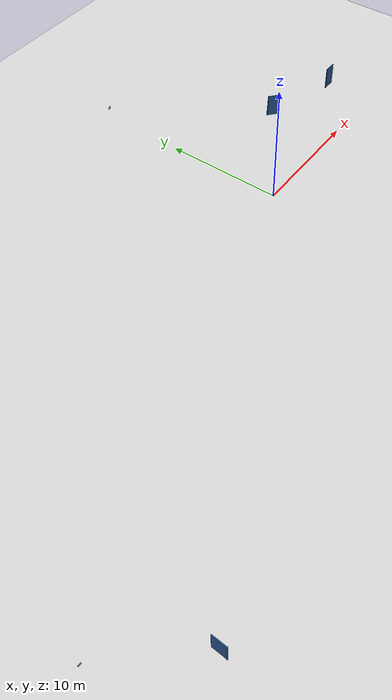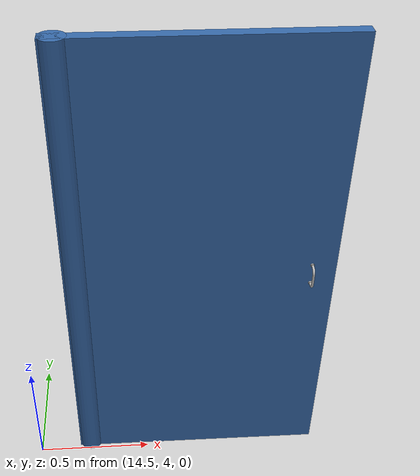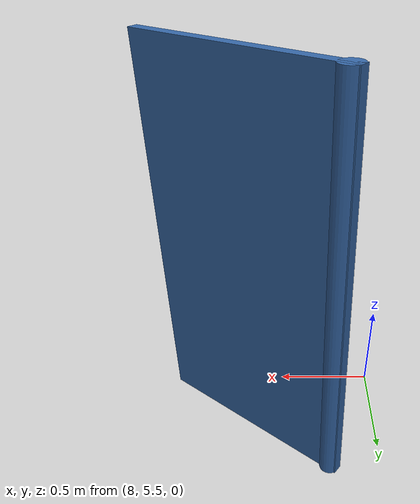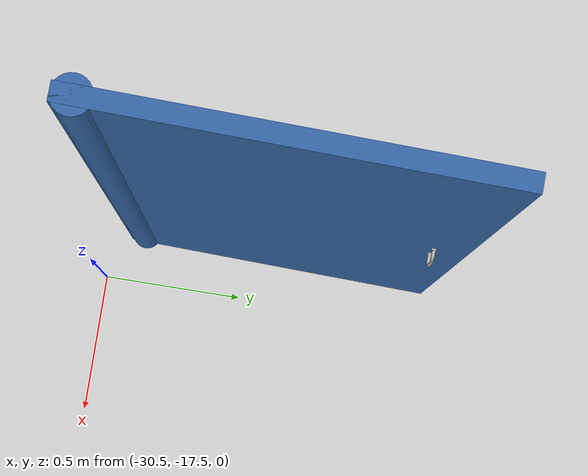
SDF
<sdf version="1.6">
 <world name="default">
  <light name="sun" type="directional">
   <pose>0 0 10 0 -0 0</pose>
   <diffuse>0.8 0.8 0.8 1</diffuse>
   <specular>0.2 0.2 0.2 1</specular>
   <attenuation>
    <range>1000</range>
    <constant>0.9</constant>
    <linear>0.01</linear>
    <quadratic>0.001</quadratic>
   </attenuation>
   <direction>-0.5 0.1 -0.9</direction>
  </light>
  <model name="ground_plane">
   <static>1</static>
   <link name="link">
    <collision name="collision">
     <geometry><plane><normal>0 0 1</normal><size>100 100</size></plane></geometry>
     <surface><friction><ode><mu>100</mu><mu2>50</mu2></ode></friction></surface>
    </collision>
    <visual name="visual">
     <cast_shadows>0</cast_shadows>
     <geometry><plane><normal>0 0 1</normal><size>100 100</size></plane></geometry>
     <material>
      <script><uri>file://media/materials/scripts/gazebo.material</uri><name>Gazebo/Grey</name></script>
     </material>
    </visual>
   </link>
  </model>
  <gravity>0 0 -9.8</gravity>
  <magnetic_field>6e-06 2.3e-05 -4.2e-05</magnetic_field>
  <atmosphere type="adiabatic"/>
  <physics name="default_physics" default="0" type="ode">
   <max_step_size>0.001</max_step_size>
   <real_time_factor>1</real_time_factor>
   <real_time_update_rate>1000</real_time_update_rate>
  </physics>
  <scene><ambient>0.4 0.4 0.4 1</ambient><background>0.7 0.7 0.7 1</background><shadows>1</shadows></scene>
  <spherical_coordinates>
   <surface_model>EARTH_WGS84</surface_model>
   <latitude_deg>0</latitude_deg>
   <longitude_deg>0</longitude_deg>
   <elevation>0</elevation>
   <heading_deg>0</heading_deg>
  </spherical_coordinates>
  <model name="hinge_right_door_0">
   <link name="link_0">
    <inertial>
     <mass>0.11</mass>
     <inertia>
      <ixx>0.0366896</ixx>
      <ixy>0</ixy>
      <ixz>0</ixz>
      <iyy>0.0477583</iyy>
      <iyz>0</iyz>
      <izz>0.0111146</izz>
     </inertia>
    </inertial>
    <pose>0.25 0 1 0 -0 0</pose>
    <visual name="visual">
     <geometry><box><size>1.1 0.05 2</size></box></geometry>
     <material>
      <lighting>1</lighting>
      <script><uri>file://media/materials/scripts/gazebo.material</uri><name>Gazebo/Grey</name></script>
      <shader type="pixel"><normal_map>__default__</normal_map></shader>
      <ambient>0.204 0.396 0.643 1</ambient>
      <diffuse>0.7 0.7 0.7 1</diffuse>
      <specular>0.01 0.01 0.01 1</specular>
      <emissive>0 0 0 1</emissive>
     </material>
    </visual>
    <collision name="collision">
     <geometry><box><size>1.1 0.05 2</size></box></geometry>
     <surface>
      <friction>
       <ode><mu>1</mu><mu2>1</mu2><fdir1>0 0 0</fdir1><slip1>0</slip1><slip2>0</slip2></ode>
       <torsional>
        <coefficient>1</coefficient>
        <patch_radius>0</patch_radius>
        <surface_radius>0</surface_radius>
        <use_patch_radius>1</use_patch_radius>
        <ode><slip>0</slip></ode>
       </torsional>
      </friction>
      <bounce><restitution_coefficient>0</restitution_coefficient><threshold>1e+06</threshold></bounce>
      <contact>
       <collide_without_contact>0</collide_without_contact>
       <collide_without_contact_bitmask>1</collide_without_contact_bitmask>
       <collide_bitmask>1</collide_bitmask>
       <ode>
        <soft_cfm>0</soft_cfm>
        <soft_erp>0.2</soft_erp>
        <kp>1e+13</kp>
        <kd>1</kd>
        <max_vel>0.01</max_vel>
        <min_depth>0</min_depth>
       </ode>
       <bullet>
        <split_impulse>1</split_impulse>
        <split_impulse_penetration_threshold>-0.01</split_impulse_penetration_threshold>
        <soft_cfm>0</soft_cfm>
        <soft_erp>0.2</soft_erp>
        <kp>1e+13</kp>
        <kd>1</kd>
       </bullet>
      </contact>
     </surface>
    </collision>
   </link>
   <link name="link_1">
    <inertial>
     <mass>10.9956</mass>
     <inertia>
      <ixx>3.67206</ixx>
      <ixy>0</ixy>
      <ixz>0</ixz>
      <iyy>3.67206</iyy>
      <iyz>0</iyz>
      <izz>0.0137445</izz>
     </inertia>
    </inertial>
    <pose>-0.25 0 1 0 -0 0</pose>
    <visual name="visual">
     <geometry><cylinder><radius>0.05</radius><length>2</length></cylinder></geometry>
     <material>
      <lighting>1</lighting>
      <script><uri>file://media/materials/scripts/gazebo.material</uri><name>Gazebo/Grey</name></script>
      <shader type="pixel"><normal_map>__default__</normal_map></shader>
      <ambient>0.204 0.396 0.643 1</ambient>
      <diffuse>0.7 0.7 0.7 1</diffuse>
      <specular>0.01 0.01 0.01 1</specular>
      <emissive>0 0 0 1</emissive>
     </material>
    </visual>
    <collision name="collision">
     <geometry><cylinder><radius>0.05</radius><length>2</length></cylinder></geometry>
     <surface>
      <friction>
       <ode><mu>1</mu><mu2>1</mu2><fdir1>0 0 0</fdir1><slip1>0</slip1><slip2>0</slip2></ode>
       <torsional>
        <coefficient>1</coefficient>
        <patch_radius>0</patch_radius>
        <surface_radius>0</surface_radius>
        <use_patch_radius>1</use_patch_radius>
        <ode><slip>0</slip></ode>
       </torsional>
      </friction>
      <bounce><restitution_coefficient>0</restitution_coefficient><threshold>1e+06</threshold></bounce>
      <contact>
       <collide_without_contact>0</collide_without_contact>
       <collide_without_contact_bitmask>1</collide_without_contact_bitmask>
       <collide_bitmask>1</collide_bitmask>
       <ode>
        <soft_cfm>0</soft_cfm>
        <soft_erp>0.2</soft_erp>
        <kp>1e+13</kp>
        <kd>1</kd>
        <max_vel>0.01</max_vel>
        <min_depth>0</min_depth>
       </ode>
       <bullet>
        <split_impulse>1</split_impulse>
        <split_impulse_penetration_threshold>-0.01</split_impulse_penetration_threshold>
        <soft_cfm>0</soft_cfm>
        <soft_erp>0.2</soft_erp>
        <kp>1e+13</kp>
        <kd>1</kd>
       </bullet>
      </contact>
     </surface>
    </collision>
   </link>
   <link name="knob">
    <inertial>
     <mass>0.1</mass>
     <inertia><ixx>1</ixx><ixy>0</ixy><ixz>0</ixz><iyy>1</iyy><iyz>0</iyz><izz>1</izz></inertia>
    </inertial>
    <pose>0.7 -0.065 1 0 -0 0</pose>
    <visual name="visual">
     <pose>0 0.04 0 -1.57 -0 3.14</pose>
     <geometry><mesh><uri>model://door/door_puller_knob.dae</uri></mesh></geometry>
    </visual>
    <collision name="collision">
     <pose>0 0.04 0 -1.57 -0 3.14</pose>
     <geometry><box><size>-0.02 -0.1 -0.09</size></box></geometry>
    </collision>
   </link>
   <joint name="hinge" type="revolute">
    <parent>link_1</parent>
    <child>link_0</child>
    <pose>-0.5 0 0 0 -0 0</pose>
    <axis>
     <xyz>0 0 1</xyz>
     <use_parent_model_frame>0</use_parent_model_frame>
     <limit>
      <lower>-1.79769e+308</lower>
      <upper>1.79769e+308</upper>
      <effort>-1</effort>
      <velocity>-1</velocity>
     </limit>
     <dynamics>
      <spring_reference>0</spring_reference>
      <spring_stiffness>0</spring_stiffness>
      <damping>0</damping>
      <friction>0</friction>
     </dynamics>
    </axis>
    <physics>
     <ode><limit><cfm>0</cfm><erp>0.2</erp></limit><suspension><cfm>0</cfm><erp>0.2</erp></suspension></ode>
    </physics>
   </joint>
   <joint name="knob_link" type="fixed">
    <parent>link_0</parent>
    <child>knob</child>
    <axis>
     <xyz>0 0 1</xyz>
     <dynamics><spring_reference>0</spring_reference><spring_stiffness>0</spring_stiffness></dynamics>
     <use_parent_model_frame>0</use_parent_model_frame>
     <limit><lower>-1e+16</lower><upper>1e+16</upper></limit>
    </axis>
   </joint>
   <joint name="floor_link" type="fixed">
    <child>link_1</child>
    <parent>world</parent>
    <axis>
     <xyz>0 0 1</xyz>
     <dynamics><spring_reference>0</spring_reference><spring_stiffness>0</spring_stiffness></dynamics>
     <use_parent_model_frame>0</use_parent_model_frame>
     <limit><lower>-1e+16</lower><upper>1e+16</upper></limit>
    </axis>
   </joint>
   <pose>14.9828 4.04216 0 0 0 -0.00239</pose>
  </model>
  <model name="hinge_right_door_1">
   <link name="link_0">
    <inertial>
     <mass>0.11</mass>
     <inertia>
      <ixx>0.0366896</ixx>
      <ixy>0</ixy>
      <ixz>0</ixz>
      <iyy>0.0477583</iyy>
      <iyz>0</iyz>
      <izz>0.0111146</izz>
     </inertia>
    </inertial>
    <pose>0.25 0 1 0 -0 0</pose>
    <visual name="visual">
     <geometry><box><size>1.1 0.05 2</size></box></geometry>
     <material>
      <lighting>1</lighting>
      <script><uri>file://media/materials/scripts/gazebo.material</uri><name>Gazebo/Grey</name></script>
      <shader type="pixel"><normal_map>__default__</normal_map></shader>
      <ambient>0.204 0.396 0.643 1</ambient>
      <diffuse>0.7 0.7 0.7 1</diffuse>
      <specular>0.01 0.01 0.01 1</specular>
      <emissive>0 0 0 1</emissive>
     </material>
    </visual>
    <collision name="collision">
     <geometry><box><size>1.1 0.05 2</size></box></geometry>
     <surface>
      <friction>
       <ode><mu>1</mu><mu2>1</mu2><fdir1>0 0 0</fdir1><slip1>0</slip1><slip2>0</slip2></ode>
       <torsional>
        <coefficient>1</coefficient>
        <patch_radius>0</patch_radius>
        <surface_radius>0</surface_radius>
        <use_patch_radius>1</use_patch_radius>
        <ode><slip>0</slip></ode>
       </torsional>
      </friction>
      <bounce><restitution_coefficient>0</restitution_coefficient><threshold>1e+06</threshold></bounce>
      <contact>
       <collide_without_contact>0</collide_without_contact>
       <collide_without_contact_bitmask>1</collide_without_contact_bitmask>
       <collide_bitmask>1</collide_bitmask>
       <ode>
        <soft_cfm>0</soft_cfm>
        <soft_erp>0.2</soft_erp>
        <kp>1e+13</kp>
        <kd>1</kd>
        <max_vel>0.01</max_vel>
        <min_depth>0</min_depth>
       </ode>
       <bullet>
        <split_impulse>1</split_impulse>
        <split_impulse_penetration_threshold>-0.01</split_impulse_penetration_threshold>
        <soft_cfm>0</soft_cfm>
        <soft_erp>0.2</soft_erp>
        <kp>1e+13</kp>
        <kd>1</kd>
       </bullet>
      </contact>
     </surface>
    </collision>
   </link>
   <link name="link_1">
    <inertial>
     <mass>10.9956</mass>
     <inertia>
      <ixx>3.67206</ixx>
      <ixy>0</ixy>
      <ixz>0</ixz>
      <iyy>3.67206</iyy>
      <iyz>0</iyz>
      <izz>0.0137445</izz>
     </inertia>
    </inertial>
    <pose>-0.25 0 1 0 -0 0</pose>
    <visual name="visual">
     <geometry><cylinder><radius>0.05</radius><length>2</length></cylinder></geometry>
     <material>
      <lighting>1</lighting>
      <script><uri>file://media/materials/scripts/gazebo.material</uri><name>Gazebo/Grey</name></script>
      <shader type="pixel"><normal_map>__default__</normal_map></shader>
      <ambient>0.204 0.396 0.643 1</ambient>
      <diffuse>0.7 0.7 0.7 1</diffuse>
      <specular>0.01 0.01 0.01 1</specular>
      <emissive>0 0 0 1</emissive>
     </material>
    </visual>
    <collision name="collision">
     <geometry><cylinder><radius>0.05</radius><length>2</length></cylinder></geometry>
     <surface>
      <friction>
       <ode><mu>1</mu><mu2>1</mu2><fdir1>0 0 0</fdir1><slip1>0</slip1><slip2>0</slip2></ode>
       <torsional>
        <coefficient>1</coefficient>
        <patch_radius>0</patch_radius>
        <surface_radius>0</surface_radius>
        <use_patch_radius>1</use_patch_radius>
        <ode><slip>0</slip></ode>
       </torsional>
      </friction>
      <bounce><restitution_coefficient>0</restitution_coefficient><threshold>1e+06</threshold></bounce>
      <contact>
       <collide_without_contact>0</collide_without_contact>
       <collide_without_contact_bitmask>1</collide_without_contact_bitmask>
       <collide_bitmask>1</collide_bitmask>
       <ode>
        <soft_cfm>0</soft_cfm>
        <soft_erp>0.2</soft_erp>
        <kp>1e+13</kp>
        <kd>1</kd>
        <max_vel>0.01</max_vel>
        <min_depth>0</min_depth>
       </ode>
       <bullet>
        <split_impulse>1</split_impulse>
        <split_impulse_penetration_threshold>-0.01</split_impulse_penetration_threshold>
        <soft_cfm>0</soft_cfm>
        <soft_erp>0.2</soft_erp>
        <kp>1e+13</kp>
        <kd>1</kd>
       </bullet>
      </contact>
     </surface>
    </collision>
   </link>
   <link name="knob">
    <inertial>
     <mass>0.1</mass>
     <inertia><ixx>1</ixx><ixy>0</ixy><ixz>0</ixz><iyy>1</iyy><iyz>0</iyz><izz>1</izz></inertia>
    </inertial>
    <pose>0.7 -0.065 1 0 -0 0</pose>
    <visual name="visual">
     <pose>0 0.04 0 -1.57 -0 3.14</pose>
     <geometry><mesh><uri>model://door/door_puller_knob.dae</uri></mesh></geometry>
    </visual>
    <collision name="collision">
     <pose>0 0.04 0 -1.57 -0 3.14</pose>
     <geometry><box><size>-0.02 -0.1 -0.09</size></box></geometry>
    </collision>
   </link>
   <joint name="hinge" type="revolute">
    <parent>link_1</parent>
    <child>link_0</child>
    <pose>-0.5 0 0 0 -0 0</pose>
    <axis>
     <xyz>0 0 1</xyz>
     <use_parent_model_frame>0</use_parent_model_frame>
     <limit>
      <lower>-1.79769e+308</lower>
      <upper>1.79769e+308</upper>
      <effort>-1</effort>
      <velocity>-1</velocity>
     </limit>
     <dynamics>
      <spring_reference>0</spring_reference>
      <spring_stiffness>0</spring_stiffness>
      <damping>0</damping>
      <friction>0</friction>
     </dynamics>
    </axis>
    <physics>
     <ode><limit><cfm>0</cfm><erp>0.2</erp></limit><suspension><cfm>0</cfm><erp>0.2</erp></suspension></ode>
    </physics>
   </joint>
   <joint name="knob_link" type="fixed">
    <parent>link_0</parent>
    <child>knob</child>
    <axis>
     <xyz>0 0 1</xyz>
     <dynamics><spring_reference>0</spring_reference><spring_stiffness>0</spring_stiffness></dynamics>
     <use_parent_model_frame>0</use_parent_model_frame>
     <limit><lower>-1e+16</lower><upper>1e+16</upper></limit>
    </axis>
   </joint>
   <joint name="floor_link" type="fixed">
    <child>link_1</child>
    <parent>world</parent>
    <axis>
     <xyz>0 0 1</xyz>
     <dynamics><spring_reference>0</spring_reference><spring_stiffness>0</spring_stiffness></dynamics>
     <use_parent_model_frame>0</use_parent_model_frame>
     <limit><lower>-1e+16</lower><upper>1e+16</upper></limit>
    </axis>
   </joint>
   <pose>8.47034 5.99285 0.032393 0.015197 0.04089 -0.665871</pose>
  </model>
  <model name="vent">
   <link name="link_0">
    <inertial>
     <mass>0.11</mass>
     <inertia>
      <ixx>0.0366896</ixx>
      <ixy>0</ixy>
      <ixz>0</ixz>
      <iyy>0.0477583</iyy>
      <iyz>0</iyz>
      <izz>0.0111146</izz>
     </inertia>
    </inertial>
    <visual name="visual">
     <geometry><box><size>0.25 0.025 0.25</size></box></geometry>
     <material>
      <script>
       <uri>model://vent/materials/scripts</uri>
       <uri>model://vent/materials/textures</uri>
       <name>Marker/Diffuse</name>
      </script>
     </material>
    </visual>
    <collision name="collision">
     <geometry><box><size>0.25 0.05 0.25</size></box></geometry>
     <surface>
      <friction>
       <ode><mu>1</mu><mu2>1</mu2><fdir1>0 0 0</fdir1><slip1>0</slip1><slip2>0</slip2></ode>
       <torsional>
        <coefficient>1</coefficient>
        <patch_radius>0</patch_radius>
        <surface_radius>0</surface_radius>
        <use_patch_radius>1</use_patch_radius>
        <ode><slip>0</slip></ode>
       </torsional>
      </friction>
      <bounce><restitution_coefficient>0</restitution_coefficient><threshold>1e+06</threshold></bounce>
      <contact>
       <collide_without_contact>0</collide_without_contact>
       <collide_without_contact_bitmask>1</collide_without_contact_bitmask>
       <collide_bitmask>1</collide_bitmask>
       <ode>
        <soft_cfm>0</soft_cfm>
        <soft_erp>0.2</soft_erp>
        <kp>1e+13</kp>
        <kd>1</kd>
        <max_vel>0.01</max_vel>
        <min_depth>0</min_depth>
       </ode>
       <bullet>
        <split_impulse>1</split_impulse>
        <split_impulse_penetration_threshold>-0.01</split_impulse_penetration_threshold>
        <soft_cfm>0</soft_cfm>
        <soft_erp>0.2</soft_erp>
        <kp>1e+13</kp>
        <kd>1</kd>
       </bullet>
      </contact>
     </surface>
    </collision>
   </link>
   <pose>0.878008 18.088 0.12499 1e-06 2e-06 0.012997</pose>
  </model>
  <model name="vent_0">
   <link name="link_0">
    <inertial>
     <mass>0.11</mass>
     <inertia>
      <ixx>0.0366896</ixx>
      <ixy>0</ixy>
      <ixz>0</ixz>
      <iyy>0.0477583</iyy>
      <iyz>0</iyz>
      <izz>0.0111146</izz>
     </inertia>
    </inertial>
    <visual name="visual">
     <geometry><box><size>0.25 0.025 0.25</size></box></geometry>
     <material>
      <script>
       <uri>model://vent/materials/scripts</uri>
       <uri>model://vent/materials/textures</uri>
       <name>Marker/Diffuse</name>
      </script>
     </material>
    </visual>
    <collision name="collision">
     <geometry><box><size>0.25 0.05 0.25</size></box></geometry>
     <surface>
      <friction>
       <ode><mu>1</mu><mu2>1</mu2><fdir1>0 0 0</fdir1><slip1>0</slip1><slip2>0</slip2></ode>
       <torsional>
        <coefficient>1</coefficient>
        <patch_radius>0</patch_radius>
        <surface_radius>0</surface_radius>
        <use_patch_radius>1</use_patch_radius>
        <ode><slip>0</slip></ode>
       </torsional>
      </friction>
      <bounce><restitution_coefficient>0</restitution_coefficient><threshold>1e+06</threshold></bounce>
      <contact>
       <collide_without_contact>0</collide_without_contact>
       <collide_without_contact_bitmask>1</collide_without_contact_bitmask>
       <collide_bitmask>1</collide_bitmask>
       <ode>
        <soft_cfm>0</soft_cfm>
        <soft_erp>0.2</soft_erp>
        <kp>1e+13</kp>
        <kd>1</kd>
        <max_vel>0.01</max_vel>
        <min_depth>0</min_depth>
       </ode>
       <bullet>
        <split_impulse>1</split_impulse>
        <split_impulse_penetration_threshold>-0.01</split_impulse_penetration_threshold>
        <soft_cfm>0</soft_cfm>
        <soft_erp>0.2</soft_erp>
        <kp>1e+13</kp>
        <kd>1</kd>
       </bullet>
      </contact>
     </surface>
    </collision>
   </link>
   <pose>-35.3789 -11.327 0.125 -2.81584 -1.57079 2.73068</pose>
  </model>
  <model name="hinge_right_door">
   <link name="link_0">
    <inertial>
     <mass>0.11</mass>
     <inertia>
      <ixx>0.0366896</ixx>
      <ixy>0</ixy>
      <ixz>0</ixz>
      <iyy>0.0477583</iyy>
      <iyz>0</iyz>
      <izz>0.0111146</izz>
     </inertia>
    </inertial>
    <pose>0.25 0 1 0 -0 0</pose>
    <visual name="visual">
     <geometry><box><size>1.1 0.05 2</size></box></geometry>
     <material>
      <lighting>1</lighting>
      <script><uri>file://media/materials/scripts/gazebo.material</uri><name>Gazebo/Grey</name></script>
      <shader type="pixel"><normal_map>__default__</normal_map></shader>
      <ambient>0.204 0.396 0.643 1</ambient>
      <diffuse>0.7 0.7 0.7 1</diffuse>
      <specular>0.01 0.01 0.01 1</specular>
      <emissive>0 0 0 1</emissive>
     </material>
    </visual>
    <collision name="collision">
     <geometry><box><size>1.1 0.05 2</size></box></geometry>
     <surface>
      <friction>
       <ode><mu>1</mu><mu2>1</mu2><fdir1>0 0 0</fdir1><slip1>0</slip1><slip2>0</slip2></ode>
       <torsional>
        <coefficient>1</coefficient>
        <patch_radius>0</patch_radius>
        <surface_radius>0</surface_radius>
        <use_patch_radius>1</use_patch_radius>
        <ode><slip>0</slip></ode>
       </torsional>
      </friction>
      <bounce><restitution_coefficient>0</restitution_coefficient><threshold>1e+06</threshold></bounce>
      <contact>
       <collide_without_contact>0</collide_without_contact>
       <collide_without_contact_bitmask>1</collide_without_contact_bitmask>
       <collide_bitmask>1</collide_bitmask>
       <ode>
        <soft_cfm>0</soft_cfm>
        <soft_erp>0.2</soft_erp>
        <kp>1e+13</kp>
        <kd>1</kd>
        <max_vel>0.01</max_vel>
        <min_depth>0</min_depth>
       </ode>
       <bullet>
        <split_impulse>1</split_impulse>
        <split_impulse_penetration_threshold>-0.01</split_impulse_penetration_threshold>
        <soft_cfm>0</soft_cfm>
        <soft_erp>0.2</soft_erp>
        <kp>1e+13</kp>
        <kd>1</kd>
       </bullet>
      </contact>
     </surface>
    </collision>
   </link>
   <link name="link_1">
    <inertial>
     <mass>10.9956</mass>
     <inertia>
      <ixx>3.67206</ixx>
      <ixy>0</ixy>
      <ixz>0</ixz>
      <iyy>3.67206</iyy>
      <iyz>0</iyz>
      <izz>0.0137445</izz>
     </inertia>
    </inertial>
    <pose>-0.25 0 1 0 -0 0</pose>
    <visual name="visual">
     <geometry><cylinder><radius>0.05</radius><length>2</length></cylinder></geometry>
     <material>
      <lighting>1</lighting>
      <script><uri>file://media/materials/scripts/gazebo.material</uri><name>Gazebo/Grey</name></script>
      <shader type="pixel"><normal_map>__default__</normal_map></shader>
      <ambient>0.204 0.396 0.643 1</ambient>
      <diffuse>0.7 0.7 0.7 1</diffuse>
      <specular>0.01 0.01 0.01 1</specular>
      <emissive>0 0 0 1</emissive>
     </material>
    </visual>
    <collision name="collision">
     <geometry><cylinder><radius>0.05</radius><length>2</length></cylinder></geometry>
     <surface>
      <friction>
       <ode><mu>1</mu><mu2>1</mu2><fdir1>0 0 0</fdir1><slip1>0</slip1><slip2>0</slip2></ode>
       <torsional>
        <coefficient>1</coefficient>
        <patch_radius>0</patch_radius>
        <surface_radius>0</surface_radius>
        <use_patch_radius>1</use_patch_radius>
        <ode><slip>0</slip></ode>
       </torsional>
      </friction>
      <bounce><restitution_coefficient>0</restitution_coefficient><threshold>1e+06</threshold></bounce>
      <contact>
       <collide_without_contact>0</collide_without_contact>
       <collide_without_contact_bitmask>1</collide_without_contact_bitmask>
       <collide_bitmask>1</collide_bitmask>
       <ode>
        <soft_cfm>0</soft_cfm>
        <soft_erp>0.2</soft_erp>
        <kp>1e+13</kp>
        <kd>1</kd>
        <max_vel>0.01</max_vel>
        <min_depth>0</min_depth>
       </ode>
       <bullet>
        <split_impulse>1</split_impulse>
        <split_impulse_penetration_threshold>-0.01</split_impulse_penetration_threshold>
        <soft_cfm>0</soft_cfm>
        <soft_erp>0.2</soft_erp>
        <kp>1e+13</kp>
        <kd>1</kd>
       </bullet>
      </contact>
     </surface>
    </collision>
   </link>
   <link name="knob">
    <inertial>
     <mass>0.1</mass>
     <inertia><ixx>1</ixx><ixy>0</ixy><ixz>0</ixz><iyy>1</iyy><iyz>0</iyz><izz>1</izz></inertia>
    </inertial>
    <pose>0.7 -0.065 1 0 -0 0</pose>
    <visual name="visual">
     <pose>0 0.04 0 -1.57 -0 3.14</pose>
     <geometry><mesh><uri>model://door/door_puller_knob.dae</uri></mesh></geometry>
    </visual>
    <collision name="collision">
     <pose>0 0.04 0 -1.57 -0 3.14</pose>
     <geometry><box><size>-0.02 -0.1 -0.09</size></box></geometry>
    </collision>
   </link>
   <joint name="hinge" type="revolute">
    <parent>link_1</parent>
    <child>link_0</child>
    <pose>-0.5 0 0 0 -0 0</pose>
    <axis>
     <xyz>0 0 1</xyz>
     <use_parent_model_frame>0</use_parent_model_frame>
     <limit>
      <lower>-1.79769e+308</lower>
      <upper>1.79769e+308</upper>
      <effort>-1</effort>
      <velocity>-1</velocity>
     </limit>
     <dynamics>
      <spring_reference>0</spring_reference>
      <spring_stiffness>0</spring_stiffness>
      <damping>0</damping>
      <friction>0</friction>
     </dynamics>
    </axis>
    <physics>
     <ode><limit><cfm>0</cfm><erp>0.2</erp></limit><suspension><cfm>0</cfm><erp>0.2</erp></suspension></ode>
    </physics>
   </joint>
   <joint name="knob_link" type="fixed">
    <parent>link_0</parent>
    <child>knob</child>
    <axis>
     <xyz>0 0 1</xyz>
     <dynamics><spring_reference>0</spring_reference><spring_stiffness>0</spring_stiffness></dynamics>
     <use_parent_model_frame>0</use_parent_model_frame>
     <limit><lower>-1e+16</lower><upper>1e+16</upper></limit>
    </axis>
   </joint>
   <joint name="floor_link" type="fixed">
    <child>link_1</child>
    <parent>world</parent>
    <axis>
     <xyz>0 0 1</xyz>
     <dynamics><spring_reference>0</spring_reference><spring_stiffness>0</spring_stiffness></dynamics>
     <use_parent_model_frame>0</use_parent_model_frame>
     <limit><lower>-1e+16</lower><upper>1e+16</upper></limit>
    </axis>
   </joint>
   <pose>-30.6728 -17.1267 0 0 -0 1.54098</pose>
  </model>
 </world>
</sdf>
